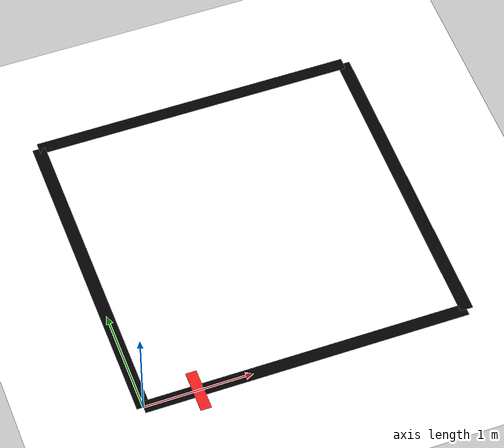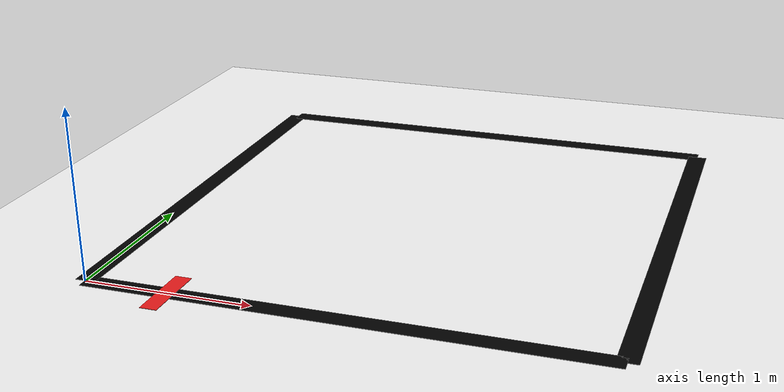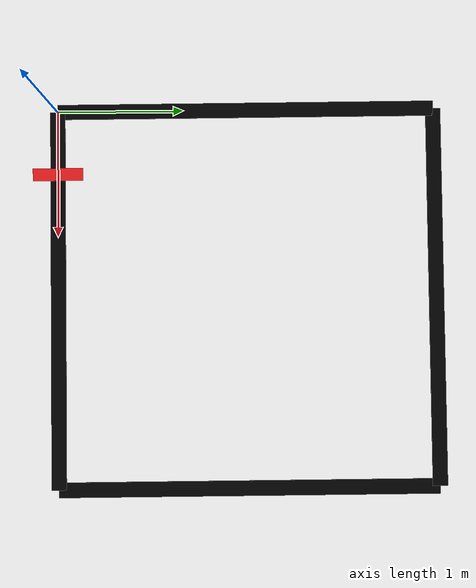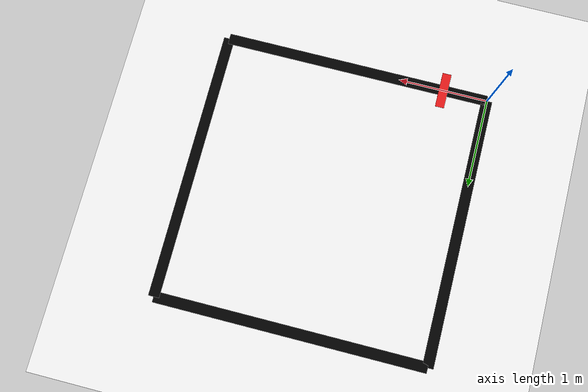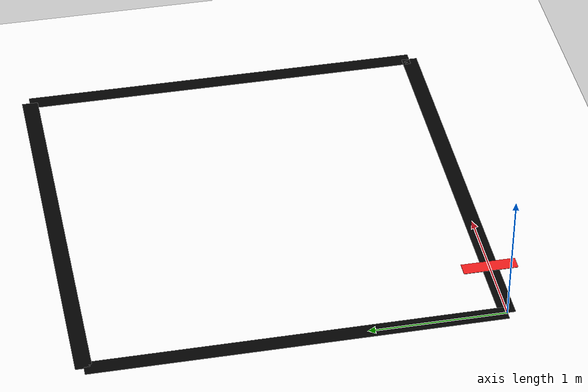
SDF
<?xml version="1.0" ?>
<sdf version="1.8">
  <world name="default">
    <plugin filename="gz-sim-physics-system" name="gz::sim::systems::Physics"/>
    <plugin filename="gz-sim-user-commands-system" name="gz::sim::systems::UserCommands"/>
    <plugin filename="gz-sim-scene-broadcaster-system" name="gz::sim::systems::SceneBroadcaster"/>
    <plugin filename="gz-sim-sensors-system" name="gz::sim::systems::Sensors">
      <render_engine>ogre2</render_engine>
    </plugin>

    <!-- BRIGHT LIGHTING -->
    <light type="directional" name="sun">
      <cast_shadows>true</cast_shadows>
      <pose>0 0 10 0 0 0</pose>
      <diffuse>1.0 1.0 1.0 1</diffuse>
      <direction>-0.5 0.1 -0.9</direction>
    </light>

    <!-- WHITE FLOOR -->
    <model name="ground_plane">
      <static>true</static>
      <link name="link">
        <collision name="c"><geometry><plane><normal>0 0 1</normal></plane></geometry></collision>
        <visual name="v">
          <geometry><plane><normal>0 0 1</normal><size>30 30</size></plane></geometry>
          <material>
            <ambient>0.95 0.95 0.95 1</ambient>
            <diffuse>0.95 0.95 0.95 1</diffuse>
          </material>
        </visual>
      </link>
    </model>

    <!-- CLOSED RACETRACK LOOP -->
    <model name="track_sec1">
      <static>true</static>
      <pose>1.5 0 0.001 0 0 0</pose>
      <link name="l"><visual name="v"><geometry><box><size>3.0 0.12 0.002</size></box></geometry><material><ambient>0 0 0 1</ambient><diffuse>0 0 0 1</diffuse></material></visual></link>
    </model>

    <model name="track_sec2">
      <static>true</static>
      <pose>3.0 1.5 0.001 0 0 1.5708</pose>
      <link name="l"><visual name="v"><geometry><box><size>3.0 0.12 0.002</size></box></geometry><material><ambient>0 0 0 1</ambient><diffuse>0 0 0 1</diffuse></material></visual></link>
    </model>

    <model name="track_sec3">
      <static>true</static>
      <pose>1.5 3.0 0.001 0 0 0</pose>
      <link name="l"><visual name="v"><geometry><box><size>3.0 0.12 0.002</size></box></geometry><material><ambient>0 0 0 1</ambient><diffuse>0 0 0 1</diffuse></material></visual></link>
    </model>

    <model name="track_sec4">
      <static>true</static>
      <pose>0.0 1.5 0.001 0 0 1.5708</pose>
      <link name="l"><visual name="v"><geometry><box><size>3.0 0.12 0.002</size></box></geometry><material><ambient>0 0 0 1</ambient><diffuse>0 0 0 1</diffuse></material></visual></link>
    </model>

    <!-- START LINE (RED) -->
    <model name="start_line">
      <static>true</static>
      <pose>0.5 0 0.002 0 0 0</pose>
      <link name="l"><visual name="v"><geometry><box><size>0.1 0.4 0.003</size></box></geometry><material><ambient>0.9 0.1 0.1 1</ambient><diffuse>0.9 0.1 0.1 1</diffuse></material></visual></link>
    </model>

  </world>
</sdf>
